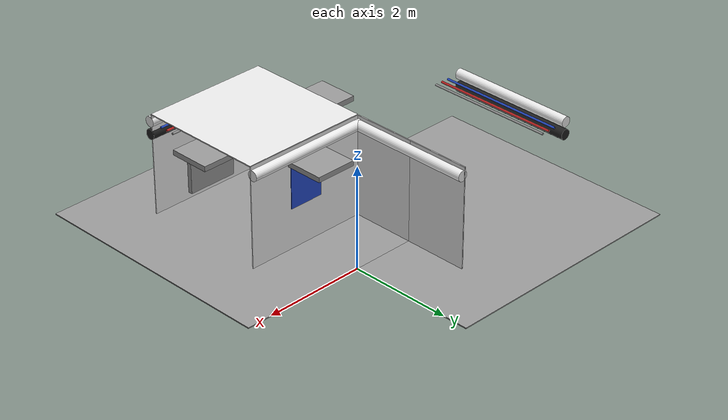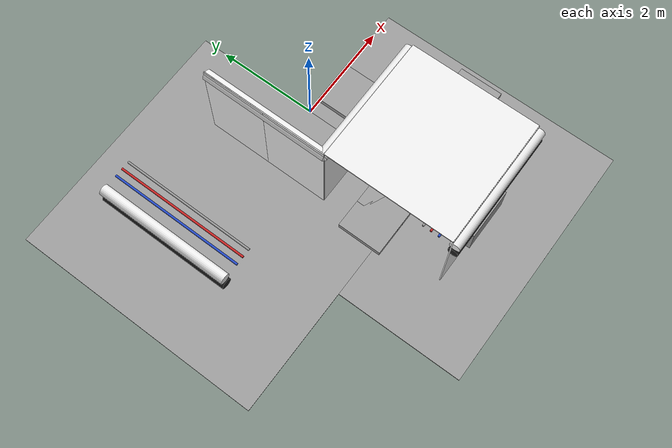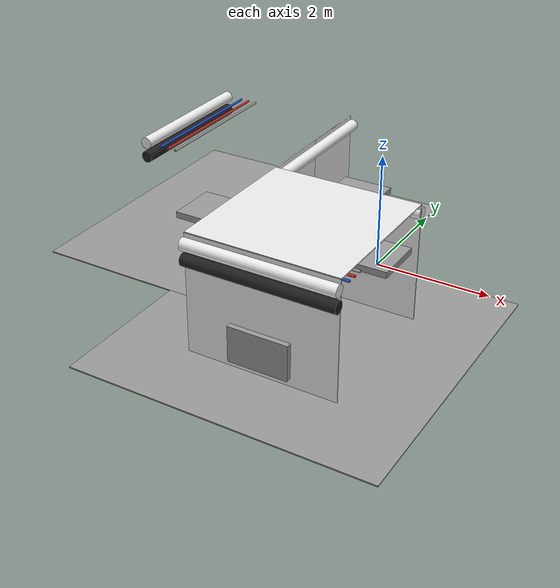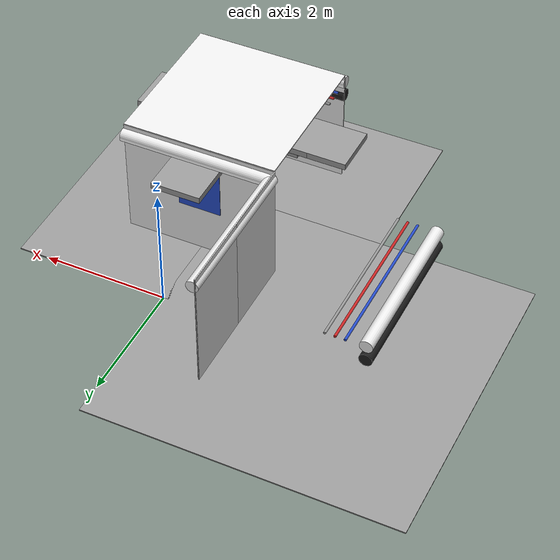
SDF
<sdf version="1.6">
 <world name="default">
  <model name="wall_back_0_0_0_0">
   <static>1</static>
   <pose>0.0 -1.25 1.0 0.0 0.0 0.0</pose>
   <link name="link">
    <collision name="collision"><geometry><box><size>2.5 0.02 2.0</size></box></geometry></collision>
    <visual name="visual">
     <material>
      <script><name>Gazebo/White</name><uri>file://media/materials/scripts/gazebo.material</uri></script>
     </material>
     <geometry><box><size>2.5 0.02 2.0</size></box></geometry>
    </visual>
   </link>
  </model>
  <model name="wall_left_0_0_0_0">
   <static>1</static>
   <pose>-1.25 0.0 1.0 0.0 0.0 1.57</pose>
   <link name="link">
    <collision name="collision"><geometry><box><size>2.5 0.02 2.0</size></box></geometry></collision>
    <visual name="visual">
     <material>
      <script><name>Gazebo/White</name><uri>file://media/materials/scripts/gazebo.material</uri></script>
     </material>
     <geometry><box><size>2.5 0.02 2.0</size></box></geometry>
    </visual>
   </link>
  </model>
  <model name="ceiling_1_0_0_1_0">
   <pose>0.0 -1.0 1.7 0.0 0.0 0.0</pose>
   <link name="link_1">
    <visual name="visual">
     <geometry><box><size>0.8 1 0.1</size></box></geometry>
     <material>
      <script><uri>file://media/materials/scripts/gazebo.material</uri><name>Gazebo/Grey</name></script>
     </material>
    </visual>
    <collision name="collision"><geometry><box><size>0.8 1 0.1</size></box></geometry></collision>
   </link>
   <static>1</static>
  </model>
  <model name="wall_left_-1_0_0_1">
   <static>1</static>
   <pose>-1.25 0.0 1.0 0.0 0.0 4.71</pose>
   <link name="link">
    <collision name="collision"><geometry><box><size>2.5 0.02 2.0</size></box></geometry></collision>
    <visual name="visual">
     <material>
      <script><name>Gazebo/White</name><uri>file://media/materials/scripts/gazebo.material</uri></script>
     </material>
     <geometry><box><size>2.5 0.02 2.0</size></box></geometry>
    </visual>
   </link>
  </model>
  <model name="white_pipe_left_-1_0_0_1">
   <static>1</static>
   <pose>-2.5 0.0 1.84 0.0 0.0 3.14</pose>
   <link name="link_0">
    <visual name="visual">
     <pose>-1.3 0 0 1.57 0 0</pose>
     <geometry><cylinder><radius>0.1</radius><length>2.5</length></cylinder></geometry>
     <material>
      <script><uri>file://media/materials/scripts/gazebo.material</uri><name>Gazebo/White</name></script>
     </material>
    </visual>
    <collision name="collision">
     <pose>-1.3 0 0 1.57 0 0</pose>
     <geometry><cylinder><radius>0.1</radius><length>2.5</length></cylinder></geometry>
    </collision>
   </link>
  </model>
  <model name="white_pipe_right_-1_0_0_1">
   <static>1</static>
   <pose>-2.5 0.0 1.84 0.0 0.0 3.14</pose>
   <link name="link_0">
    <visual name="visual">
     <pose>1.3 0 0 1.57 0 0</pose>
     <geometry><cylinder><radius>0.1</radius><length>2.5</length></cylinder></geometry>
     <material>
      <script><uri>file://media/materials/scripts/gazebo.material</uri><name>Gazebo/White</name></script>
     </material>
    </visual>
    <collision name="collision">
     <pose>1.3 0 0 1.57 0 0</pose>
     <geometry><cylinder><radius>0.1</radius><length>2.5</length></cylinder></geometry>
    </collision>
   </link>
  </model>
  <model name="black_pipe_right_-1_0_0_1">
   <static>1</static>
   <pose>-2.5 0.0 1.84 0.0 0.0 3.14</pose>
   <link name="link_0">
    <visual name="visual">
     <pose>1.3 0 -0.25 1.57 0 0</pose>
     <geometry><cylinder><radius>0.1</radius><length>2.5</length></cylinder></geometry>
     <material>
      <script><uri>file://media/materials/scripts/gazebo.material</uri><name>Gazebo/Black</name></script>
     </material>
    </visual>
    <collision name="collision">
     <pose>1.3 0 -0.25 1.57 0 0</pose>
     <geometry><cylinder><radius>0.1</radius><length>2.5</length></cylinder></geometry>
    </collision>
   </link>
  </model>
  <model name="grey_pipe_right_-1_0_0_1">
   <static>1</static>
   <pose>-2.5 0.0 1.84 0.0 0.0 3.14</pose>
   <link name="link_0">
    <visual name="visual">
     <pose>0.7 0 0 1.57 0 0</pose>
     <geometry><cylinder><radius>0.02</radius><length>2.5</length></cylinder></geometry>
     <material>
      <script><uri>file://media/materials/scripts/gazebo.material</uri><name>Gazebo/Grey</name></script>
     </material>
    </visual>
    <collision name="collision">
     <pose>0.7 0 0 1.57 0 0</pose>
     <geometry><cylinder><radius>0.02</radius><length>2.5</length></cylinder></geometry>
    </collision>
   </link>
  </model>
  <model name="red_pipe_right_-1_0_0_1">
   <static>1</static>
   <pose>-2.5 0.0 1.84 0.0 0.0 3.14</pose>
   <link name="link_0">
    <visual name="visual">
     <pose>0.85 0 0 1.57 0 0</pose>
     <geometry><cylinder><radius>0.02</radius><length>2.5</length></cylinder></geometry>
     <material>
      <script><uri>file://media/materials/scripts/gazebo.material</uri><name>Gazebo/Red</name></script>
     </material>
    </visual>
    <collision name="collision">
     <pose>0.85 0 0 1.57 0 0</pose>
     <geometry><cylinder><radius>0.02</radius><length>2.5</length></cylinder></geometry>
    </collision>
   </link>
  </model>
  <model name="blue_pipe_right_-1_0_0_1">
   <static>1</static>
   <pose>-2.5 0.0 1.84 0.0 0.0 3.14</pose>
   <link name="link_0">
    <visual name="visual">
     <pose>1 0 0 1.57 0 0</pose>
     <geometry><cylinder><radius>0.02</radius><length>2.5</length></cylinder></geometry>
     <material>
      <script><uri>file://media/materials/scripts/gazebo.material</uri><name>Gazebo/Blue</name></script>
     </material>
    </visual>
    <collision name="collision">
     <pose>1 0 0 1.57 0 0</pose>
     <geometry><cylinder><radius>0.02</radius><length>2.5</length></cylinder></geometry>
    </collision>
   </link>
  </model>
  <model name="wall_bottom_-1_0_0_1">
   <static>1</static>
   <pose>-2.5 0.0 0.0 0.0 0.0 3.14</pose>
   <link name="link">
    <collision name="collision"><geometry><box><size>5.0 5.0 0.02</size></box></geometry></collision>
    <visual name="visual">
     <material>
      <script><name>Gazebo/Grey</name><uri>file://media/materials/scripts/gazebo.material</uri></script>
     </material>
     <geometry><box><size>5.0 5.0 0.02</size></box></geometry>
    </visual>
   </link>
  </model>
  <model name="ceiling_1_-1_-1_1_3">
   <pose>-1.5 -2.5 1.7 0.0 0.0 4.71</pose>
   <link name="link_1">
    <visual name="visual">
     <geometry><box><size>0.8 1 0.1</size></box></geometry>
     <material>
      <script><uri>file://media/materials/scripts/gazebo.material</uri><name>Gazebo/Grey</name></script>
     </material>
    </visual>
    <collision name="collision"><geometry><box><size>0.8 1 0.1</size></box></geometry></collision>
   </link>
   <static>1</static>
  </model>
  <model name="wall_right_0_-1_0_1">
   <static>1</static>
   <pose>0.0 -3.75 1.0 0.0 0.0 0.0</pose>
   <link name="link">
    <collision name="collision"><geometry><box><size>2.5 0.02 2.0</size></box></geometry></collision>
    <visual name="visual">
     <material>
      <script><name>Gazebo/White</name><uri>file://media/materials/scripts/gazebo.material</uri></script>
     </material>
     <geometry><box><size>2.5 0.02 2.0</size></box></geometry>
    </visual>
   </link>
  </model>
  <model name="wall_left_0_-1_0_1">
   <static>1</static>
   <pose>0.0 -1.25 1.0 0.0 0.0 0.0</pose>
   <link name="link">
    <collision name="collision"><geometry><box><size>2.5 0.02 2.0</size></box></geometry></collision>
    <visual name="visual">
     <material>
      <script><name>Gazebo/White</name><uri>file://media/materials/scripts/gazebo.material</uri></script>
     </material>
     <geometry><box><size>2.5 0.02 2.0</size></box></geometry>
    </visual>
   </link>
  </model>
  <model name="wall_top_0_-1_0_1">
   <static>1</static>
   <pose>0.0 -2.5 2.0 1.57 0.0 -1.57</pose>
   <link name="link">
    <collision name="collision"><geometry><box><size>2.5 0.02 2.5</size></box></geometry></collision>
    <visual name="visual">
     <material>
      <script><name>Gazebo/White</name><uri>file://media/materials/scripts/gazebo.material</uri></script>
     </material>
     <geometry><box><size>2.5 0.02 2.5</size></box></geometry>
    </visual>
   </link>
  </model>
  <model name="ceiling_1_0_-1_0_1">
   <pose>0.0 -2.5 1.7 0.0 0.0 -1.57</pose>
   <link name="link_1">
    <visual name="visual">
     <geometry><box><size>0.8 1 0.1</size></box></geometry>
     <material>
      <script><uri>file://media/materials/scripts/gazebo.material</uri><name>Gazebo/Grey</name></script>
     </material>
    </visual>
    <collision name="collision"><geometry><box><size>0.8 1 0.1</size></box></geometry></collision>
   </link>
   <static>1</static>
  </model>
  <model name="ceiling_1_0_-1_1_1">
   <pose>-1.0 -2.5 1.7 0.0 0.0 -1.57</pose>
   <link name="link_1">
    <visual name="visual">
     <geometry><box><size>0.8 1 0.1</size></box></geometry>
     <material>
      <script><uri>file://media/materials/scripts/gazebo.material</uri><name>Gazebo/Grey</name></script>
     </material>
    </visual>
    <collision name="collision"><geometry><box><size>0.8 1 0.1</size></box></geometry></collision>
   </link>
   <static>1</static>
  </model>
  <model name="ceiling_1_0_-1_2_1">
   <pose>1.0 -2.5 1.7 0.0 0.0 -1.57</pose>
   <link name="link_1">
    <visual name="visual">
     <geometry><box><size>0.8 1 0.1</size></box></geometry>
     <material>
      <script><uri>file://media/materials/scripts/gazebo.material</uri><name>Gazebo/Grey</name></script>
     </material>
    </visual>
    <collision name="collision"><geometry><box><size>0.8 1 0.1</size></box></geometry></collision>
   </link>
   <static>1</static>
  </model>
  <model name="white_pipe_left_0_-1_0_1">
   <static>1</static>
   <pose>0.0 -2.5 1.84 0.0 0.0 -1.57</pose>
   <link name="link_0">
    <visual name="visual">
     <pose>-1.3 0 0 1.57 0 0</pose>
     <geometry><cylinder><radius>0.1</radius><length>2.5</length></cylinder></geometry>
     <material>
      <script><uri>file://media/materials/scripts/gazebo.material</uri><name>Gazebo/White</name></script>
     </material>
    </visual>
    <collision name="collision">
     <pose>-1.3 0 0 1.57 0 0</pose>
     <geometry><cylinder><radius>0.1</radius><length>2.5</length></cylinder></geometry>
    </collision>
   </link>
  </model>
  <model name="white_pipe_right_0_-1_0_1">
   <static>1</static>
   <pose>0.0 -2.5 1.84 0.0 0.0 -1.57</pose>
   <link name="link_0">
    <visual name="visual">
     <pose>1.3 0 0 1.57 0 0</pose>
     <geometry><cylinder><radius>0.1</radius><length>2.5</length></cylinder></geometry>
     <material>
      <script><uri>file://media/materials/scripts/gazebo.material</uri><name>Gazebo/White</name></script>
     </material>
    </visual>
    <collision name="collision">
     <pose>1.3 0 0 1.57 0 0</pose>
     <geometry><cylinder><radius>0.1</radius><length>2.5</length></cylinder></geometry>
    </collision>
   </link>
  </model>
  <model name="black_pipe_right_0_-1_0_1">
   <static>1</static>
   <pose>0.0 -2.5 1.84 0.0 0.0 -1.57</pose>
   <link name="link_0">
    <visual name="visual">
     <pose>1.3 0 -0.25 1.57 0 0</pose>
     <geometry><cylinder><radius>0.1</radius><length>2.5</length></cylinder></geometry>
     <material>
      <script><uri>file://media/materials/scripts/gazebo.material</uri><name>Gazebo/Black</name></script>
     </material>
    </visual>
    <collision name="collision">
     <pose>1.3 0 -0.25 1.57 0 0</pose>
     <geometry><cylinder><radius>0.1</radius><length>2.5</length></cylinder></geometry>
    </collision>
   </link>
  </model>
  <model name="grey_pipe_right_0_-1_0_1">
   <static>1</static>
   <pose>0.0 -2.5 1.84 0.0 0.0 -1.57</pose>
   <link name="link_0">
    <visual name="visual">
     <pose>0.7 0 0 1.57 0 0</pose>
     <geometry><cylinder><radius>0.02</radius><length>2.5</length></cylinder></geometry>
     <material>
      <script><uri>file://media/materials/scripts/gazebo.material</uri><name>Gazebo/Grey</name></script>
     </material>
    </visual>
    <collision name="collision">
     <pose>0.7 0 0 1.57 0 0</pose>
     <geometry><cylinder><radius>0.02</radius><length>2.5</length></cylinder></geometry>
    </collision>
   </link>
  </model>
  <model name="red_pipe_right_0_-1_0_1">
   <static>1</static>
   <pose>0.0 -2.5 1.84 0.0 0.0 -1.57</pose>
   <link name="link_0">
    <visual name="visual">
     <pose>0.85 0 0 1.57 0 0</pose>
     <geometry><cylinder><radius>0.02</radius><length>2.5</length></cylinder></geometry>
     <material>
      <script><uri>file://media/materials/scripts/gazebo.material</uri><name>Gazebo/Red</name></script>
     </material>
    </visual>
    <collision name="collision">
     <pose>0.85 0 0 1.57 0 0</pose>
     <geometry><cylinder><radius>0.02</radius><length>2.5</length></cylinder></geometry>
    </collision>
   </link>
  </model>
  <model name="blue_pipe_right_0_-1_0_1">
   <static>1</static>
   <pose>0.0 -2.5 1.84 0.0 0.0 -1.57</pose>
   <link name="link_0">
    <visual name="visual">
     <pose>1 0 0 1.57 0 0</pose>
     <geometry><cylinder><radius>0.02</radius><length>2.5</length></cylinder></geometry>
     <material>
      <script><uri>file://media/materials/scripts/gazebo.material</uri><name>Gazebo/Blue</name></script>
     </material>
    </visual>
    <collision name="collision">
     <pose>1 0 0 1.57 0 0</pose>
     <geometry><cylinder><radius>0.02</radius><length>2.5</length></cylinder></geometry>
    </collision>
   </link>
  </model>
  <model name="wall_bottom_0_-1_0_1">
   <static>1</static>
   <pose>0.0 -2.5 0.0 0.0 0.0 -1.57</pose>
   <link name="link">
    <collision name="collision"><geometry><box><size>5.0 5.0 0.02</size></box></geometry></collision>
    <visual name="visual">
     <material>
      <script><name>Gazebo/Grey</name><uri>file://media/materials/scripts/gazebo.material</uri></script>
     </material>
     <geometry><box><size>5.0 5.0 0.02</size></box></geometry>
    </visual>
   </link>
  </model>
  <model name="panel_0_-1_0_1">
   <static>1</static>
   <pose>0.0 -3.75 0.44 0.0 0.0 -1.57</pose>
   <link name="link">
    <collision name="collision"><geometry><box><size>0.2 1 0.6</size></box></geometry></collision>
    <visual name="visual">
     <material>
      <script><name>Gazebo/Grey</name><uri>file://media/materials/scripts/gazebo.material</uri></script>
     </material>
     <geometry><box><size>0.2 1 0.6</size></box></geometry>
    </visual>
   </link>
  </model>
  <model name="panel_0_-1_1_1">
   <static>1</static>
   <pose>0.0 -1.25 1.3 0.0 0.0 -1.57</pose>
   <link name="link">
    <collision name="collision"><geometry><box><size>0.04 0.7 1</size></box></geometry></collision>
    <visual name="visual">
     <material>
      <script><name>Gazebo/Blue</name><uri>file://media/materials/scripts/gazebo.material</uri></script>
     </material>
     <geometry><box><size>0.04 0.7 1</size></box></geometry>
    </visual>
   </link>
  </model>
 </world>
</sdf>
